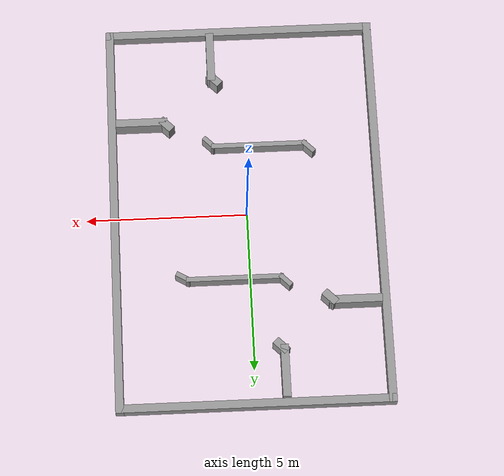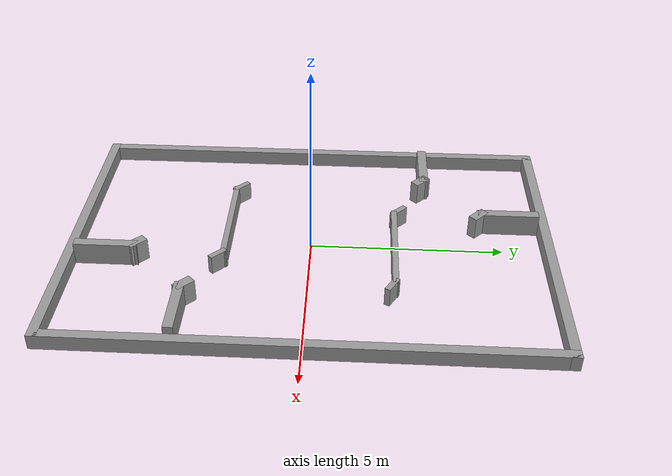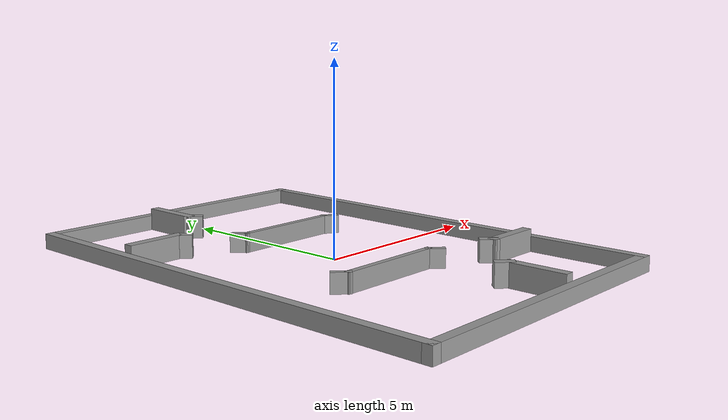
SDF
<?xml version='1.0'?>
<sdf version='1.7'>
  <model name='3V3'>
    <pose>0 0 0 0 -0 0</pose>
    <link name='Wall_16'>
      <collision name='Wall_16_Collision'>
        <geometry>
          <box>
            <size>12.5 0.25 0.4</size>
          </box>
        </geometry>
        <pose>0 0 0.2 0 -0 0</pose>
      </collision>
      <visual name='Wall_16_Visual'>
        <pose>0 0 0.2 0 -0 0</pose>
        <geometry>
          <box>
            <size>12.5 0.25 0.4</size>
          </box>
        </geometry>
        <material>
          <script>
            <uri>file://media/materials/scripts/gazebo.material</uri>
            <name>Gazebo/Grey</name>
          </script>
          <ambient>1 1 1 1</ambient>
        </material>
        <meta>
          <layer>0</layer>
        </meta>
      </visual>
      <pose>-4.125 0 0 0 -0 1.5708</pose>
    </link>
    <link name='Wall_18'>
      <collision name='Wall_18_Collision'>
        <geometry>
          <box>
            <size>8.5 0.25 0.4</size>
          </box>
        </geometry>
        <pose>0 0 0.2 0 -0 0</pose>
      </collision>
      <visual name='Wall_18_Visual'>
        <pose>0 0 0.2 0 -0 0</pose>
        <geometry>
          <box>
            <size>8.5 0.25 0.4</size>
          </box>
        </geometry>
        <material>
          <script>
            <uri>file://media/materials/scripts/gazebo.material</uri>
            <name>Gazebo/Grey</name>
          </script>
          <ambient>1 1 1 1</ambient>
        </material>
        <meta>
          <layer>0</layer>
        </meta>
      </visual>
      <pose>0 6.125 0 0 -0 3.14159</pose>
    </link>
    <link name='Wall_20'>
      <collision name='Wall_20_Collision'>
        <geometry>
          <box>
            <size>12.5 0.25 0.4</size>
          </box>
        </geometry>
        <pose>0 0 0.2 0 -0 0</pose>
      </collision>
      <visual name='Wall_20_Visual'>
        <pose>0 0 0.2 0 -0 0</pose>
        <geometry>
          <box>
            <size>12.5 0.25 0.4</size>
          </box>
        </geometry>
        <material>
          <script>
            <uri>file://media/materials/scripts/gazebo.material</uri>
            <name>Gazebo/Grey</name>
          </script>
          <ambient>1 1 1 1</ambient>
        </material>
        <meta>
          <layer>0</layer>
        </meta>
      </visual>
      <pose>4.125 0 0 0 -0 1.5708</pose>
    </link>
    <link name='Wall_22'>
      <collision name='Wall_22_Collision'>
        <geometry>
          <box>
            <size>1.625 0.25 0.6</size>
          </box>
        </geometry>
        <pose>0 0 0.3 0 -0 0</pose>
      </collision>
      <visual name='Wall_22_Visual'>
        <pose>0 0 0.3 0 -0 0</pose>
        <geometry>
          <box>
            <size>1.625 0.25 0.6</size>
          </box>
        </geometry>
        <material>
          <script>
            <uri>file://media/materials/scripts/gazebo.material</uri>
            <name>Gazebo/Grey</name>
          </script>
          <ambient>1 1 1 1</ambient>
        </material>
        <meta>
          <layer>0</layer>
        </meta>
      </visual>
      <pose>3.1875 -3.026 0 0 -0 3.14159</pose>
    </link>
    <link name='Wall_24'>
      <collision name='Wall_24_Collision'>
        <geometry>
          <box>
            <size>1.625 0.25 0.6</size>
          </box>
        </geometry>
        <pose>0 0 0.3 0 -0 0</pose>
      </collision>
      <visual name='Wall_24_Visual'>
        <pose>0 0 0.3 0 -0 0</pose>
        <geometry>
          <box>
            <size>1.625 0.25 0.6</size>
          </box>
        </geometry>
        <material>
          <script>
            <uri>file://media/materials/scripts/gazebo.material</uri>
            <name>Gazebo/Grey</name>
          </script>
          <ambient>1 1 1 1</ambient>
        </material>
        <meta>
          <layer>0</layer>
        </meta>
      </visual>
      <pose>-3.1875 3.026 0 0 -0 0</pose>
    </link>
    <link name='Wall_26'>
      <collision name='Wall_26_Collision'>
        <geometry>
          <box>
            <size>1.625 0.25 0.6</size>
          </box>
        </geometry>
        <pose>0 0 0.3 0 -0 0</pose>
      </collision>
      <visual name='Wall_26_Visual'>
        <pose>0 0 0.3 0 -0 0</pose>
        <geometry>
          <box>
            <size>1.625 0.25 0.6</size>
          </box>
        </geometry>
        <material>
          <script>
            <uri>file://media/materials/scripts/gazebo.material</uri>
            <name>Gazebo/Grey</name>
          </script>
          <ambient>1 1 1 1</ambient>
        </material>
        <meta>
          <layer>0</layer>
        </meta>
      </visual>
      <pose>0.93 -5.1875 0 0 -0 1.5708</pose>
    </link>
    <link name='Wall_54'>
      <collision name='Wall_54_Collision'>
        <geometry>
          <box>
            <size>8.5 0.25 0.4</size>
          </box>
        </geometry>
        <pose>0 0 0.2 0 -0 0</pose>
      </collision>
      <visual name='Wall_54_Visual'>
        <pose>0 0 0.2 0 -0 0</pose>
        <geometry>
          <box>
            <size>8.5 0.25 0.4</size>
          </box>
        </geometry>
        <material>
          <script>
            <uri>file://media/materials/scripts/gazebo.material</uri>
            <name>Gazebo/Grey</name>
          </script>
          <ambient>1 1 1 1</ambient>
        </material>
        <meta>
          <layer>0</layer>
        </meta>
      </visual>
      <pose>0 -6.125 0 0 -0 3.14159</pose>
    </link>
    <link name='Wall_58'>
      <collision name='Wall_58_Collision'>
        <geometry>
          <box>
            <size>1.625 0.25 0.6</size>
          </box>
        </geometry>
        <pose>0 0 0.3 0 -0 0</pose>
      </collision>
      <visual name='Wall_58_Visual'>
        <pose>0 0 0.3 0 -0 0</pose>
        <geometry>
          <box>
            <size>1.625 0.25 0.6</size>
          </box>
        </geometry>
        <material>
          <script>
            <uri>file://media/materials/scripts/gazebo.material</uri>
            <name>Gazebo/Grey</name>
          </script>
          <ambient>1 1 1 1</ambient>
        </material>
        <meta>
          <layer>0</layer>
        </meta>
      </visual>
      <pose>-0.93 5.1875 0 0 -0 -1.5708</pose>
    </link>
    <link name='Wall_60'>
      <collision name='Wall_60_Collision'>
        <geometry>
          <box>
            <size>3 0.15 0.5</size>
          </box>
        </geometry>
        <pose>0 0 0.25 0 -0 0</pose>
      </collision>
      <visual name='Wall_60_Visual'>
        <pose>0 0 0.25 0 -0 0</pose>
        <geometry>
          <box>
            <size>3 0.15 0.5</size>
          </box>
        </geometry>
        <material>
          <script>
            <uri>file://media/materials/scripts/gazebo.material</uri>
            <name>Gazebo/Grey</name>
          </script>
          <ambient>1 1 1 1</ambient>
        </material>
        <meta>
          <layer>0</layer>
        </meta>
      </visual>
      <pose>-0.475 -2.175 0 0 -0 3.14159</pose>
    </link>
    <link name='Wall_62'>
      <collision name='Wall_62_Collision'>
        <geometry>
          <box>
            <size>3 0.15 0.5</size>
          </box>
        </geometry>
        <pose>0 0 0.25 0 -0 0</pose>
      </collision>
      <visual name='Wall_62_Visual'>
        <pose>0 0 0.25 0 -0 0</pose>
        <geometry>
          <box>
            <size>3 0.15 0.5</size>
          </box>
        </geometry>
        <material>
          <script>
            <uri>file://media/materials/scripts/gazebo.material</uri>
            <name>Gazebo/Grey</name>
          </script>
          <ambient>1 1 1 1</ambient>
        </material>
        <meta>
          <layer>0</layer>
        </meta>
      </visual>
      <pose>0.475 2.175 0 0 -0 0</pose>
    </link>
    <link name='Wall_64'>
      <collision name='Wall_64_Collision'>
        <geometry>
          <box>
            <size>0.5 0.15 0.5</size>
          </box>
        </geometry>
        <pose>0 0 0.25 0 -0 0</pose>
      </collision>
      <visual name='Wall_64_Visual'>
        <pose>0 0 0.25 0 -0 0</pose>
        <geometry>
          <box>
            <size>0.5 0.15 0.5</size>
          </box>
        </geometry>
        <material>
          <script>
            <uri>file://media/materials/scripts/gazebo.material</uri>
            <name>Gazebo/Grey</name>
          </script>
          <ambient>1 1 1 1</ambient>
        </material>
        <meta>
          <layer>0</layer>
        </meta>
      </visual>
      <pose>-2.02374 -2.05126 0 0 -0 2.35619</pose>
    </link>
    <link name='Wall_66'>
      <collision name='Wall_66_Collision'>
        <geometry>
          <box>
            <size>0.5 0.15 0.5</size>
          </box>
        </geometry>
        <pose>0 0 0.25 0 -0 0</pose>
      </collision>
      <visual name='Wall_66_Visual'>
        <pose>0 0 0.25 0 -0 0</pose>
        <geometry>
          <box>
            <size>0.5 0.15 0.5</size>
          </box>
        </geometry>
        <material>
          <script>
            <uri>file://media/materials/scripts/gazebo.material</uri>
            <name>Gazebo/Grey</name>
          </script>
          <ambient>1 1 1 1</ambient>
        </material>
        <meta>
          <layer>0</layer>
        </meta>
      </visual>
      <pose>1.07374 -2.29874 0 0 -0 -0.785398</pose>
    </link>
    <link name='Wall_68'>
      <collision name='Wall_68_Collision'>
        <geometry>
          <box>
            <size>0.5 0.15 0.5</size>
          </box>
        </geometry>
        <pose>0 0 0.25 0 -0 0</pose>
      </collision>
      <visual name='Wall_68_Visual'>
        <pose>0 0 0.25 0 -0 0</pose>
        <geometry>
          <box>
            <size>0.5 0.15 0.5</size>
          </box>
        </geometry>
        <material>
          <script>
            <uri>file://media/materials/scripts/gazebo.material</uri>
            <name>Gazebo/Grey</name>
          </script>
          <ambient>1 1 1 1</ambient>
        </material>
        <meta>
          <layer>0</layer>
        </meta>
      </visual>
      <pose>-1.0735 2.2985 0 0 -0 2.35619</pose>
    </link>
    <link name='Wall_70'>
      <collision name='Wall_70_Collision'>
        <geometry>
          <box>
            <size>0.5 0.15 0.5</size>
          </box>
        </geometry>
        <pose>0 0 0.25 0 -0 0</pose>
      </collision>
      <visual name='Wall_70_Visual'>
        <pose>0 0 0.25 0 -0 0</pose>
        <geometry>
          <box>
            <size>0.5 0.15 0.5</size>
          </box>
        </geometry>
        <material>
          <script>
            <uri>file://media/materials/scripts/gazebo.material</uri>
            <name>Gazebo/Grey</name>
          </script>
          <ambient>1 1 1 1</ambient>
        </material>
        <meta>
          <layer>0</layer>
        </meta>
      </visual>
      <pose>2.0515 2.0875 0 0 -0 -0.523754</pose>
    </link>
    <link name='Wall_73'>
      <collision name='Wall_73_Collision'>
        <geometry>
          <box>
            <size>0.5 0.25 0.6</size>
          </box>
        </geometry>
        <pose>0 0 0.3 0 -0 0</pose>
      </collision>
      <visual name='Wall_73_Visual'>
        <pose>0 0 0.3 0 -0 0</pose>
        <geometry>
          <box>
            <size>0.5 0.25 0.6</size>
          </box>
        </geometry>
        <material>
          <script>
            <uri>file://media/materials/scripts/gazebo.material</uri>
            <name>Gazebo/Grey</name>
          </script>
          <ambient>1 1 1 1</ambient>
        </material>
        <meta>
          <layer>0</layer>
        </meta>
      </visual>
      <pose>2.4115 -2.9375 0 0 -0 2.35619</pose>
    </link>
    <link name='Wall_75'>
      <collision name='Wall_75_Collision'>
        <geometry>
          <box>
            <size>0.5 0.25 0.6</size>
          </box>
        </geometry>
        <pose>0 0 0.3 0 -0 0</pose>
      </collision>
      <visual name='Wall_75_Visual'>
        <pose>0 0 0.3 0 -0 0</pose>
        <geometry>
          <box>
            <size>0.5 0.25 0.6</size>
          </box>
        </geometry>
        <material>
          <script>
            <uri>file://media/materials/scripts/gazebo.material</uri>
            <name>Gazebo/Grey</name>
          </script>
          <ambient>1 1 1 1</ambient>
        </material>
        <meta>
          <layer>0</layer>
        </meta>
      </visual>
      <pose>0.841612 -4.41161 0 0 -0 2.35619</pose>
    </link>
    <link name='Wall_77'>
      <collision name='Wall_77_Collision'>
        <geometry>
          <box>
            <size>0.5 0.25 0.6</size>
          </box>
        </geometry>
        <pose>0 0 0.3 0 -0 0</pose>
      </collision>
      <visual name='Wall_77_Visual'>
        <pose>0 0 0.3 0 -0 0</pose>
        <geometry>
          <box>
            <size>0.5 0.25 0.6</size>
          </box>
        </geometry>
        <material>
          <script>
            <uri>file://media/materials/scripts/gazebo.material</uri>
            <name>Gazebo/Grey</name>
          </script>
          <ambient>1 1 1 1</ambient>
        </material>
        <meta>
          <layer>0</layer>
        </meta>
      </visual>
      <pose>-2.41161 2.93761 0 0 -0 -0.785398</pose>
    </link>
    <link name='Wall_79'>
      <collision name='Wall_79_Collision'>
        <geometry>
          <box>
            <size>0.5 0.25 0.6</size>
          </box>
        </geometry>
        <pose>0 0 0.3 0 -0 0</pose>
      </collision>
      <visual name='Wall_79_Visual'>
        <pose>0 0 0.3 0 -0 0</pose>
        <geometry>
          <box>
            <size>0.5 0.25 0.6</size>
          </box>
        </geometry>
        <material>
          <script>
            <uri>file://media/materials/scripts/gazebo.material</uri>
            <name>Gazebo/Grey</name>
          </script>
          <ambient>1 1 1 1</ambient>
        </material>
        <meta>
          <layer>0</layer>
        </meta>
      </visual>
      <pose>-0.841612 4.41161 0 0 -0 -0.785398</pose>
    </link>
    <static>1</static>
  </model>
</sdf>
